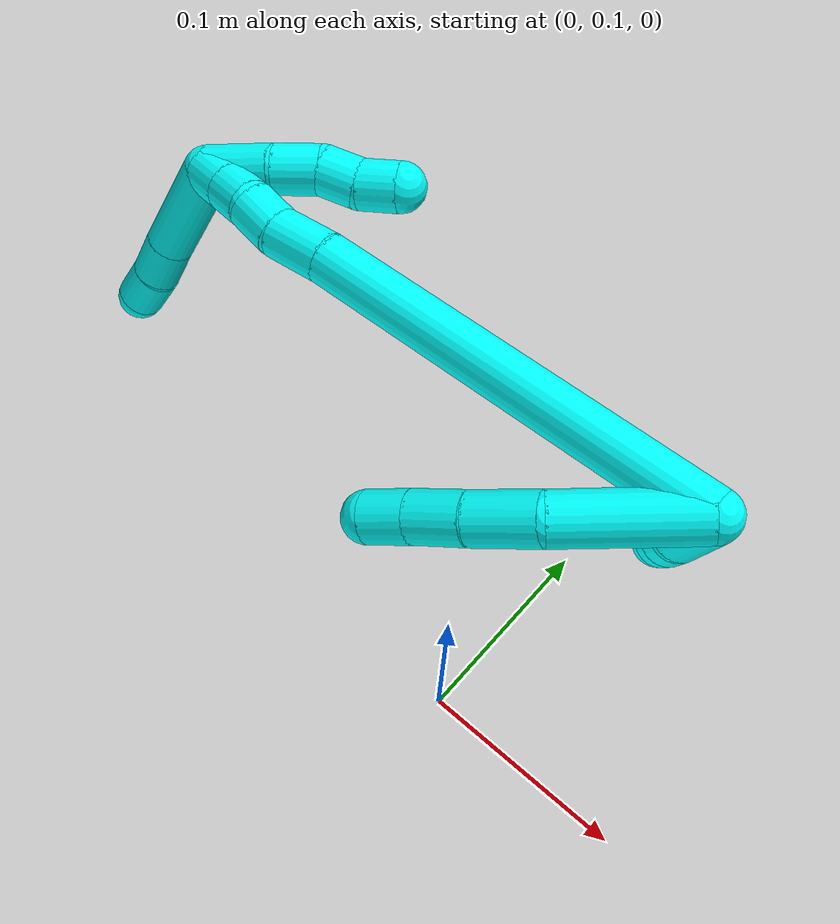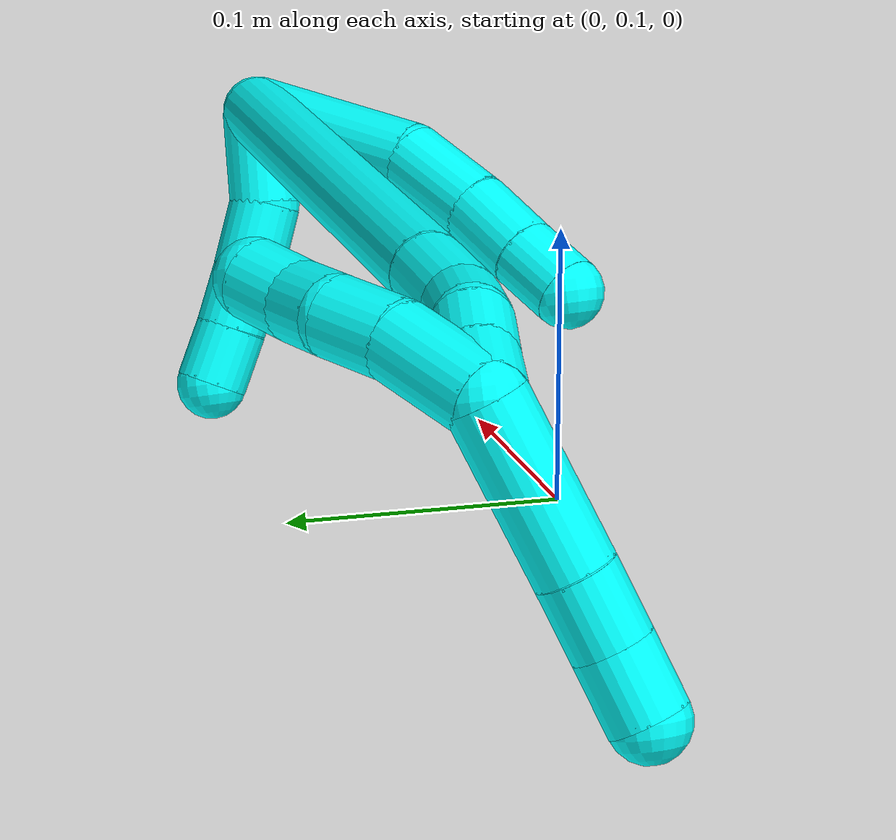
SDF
<sdf version="1.7">
 <world name="default">
  <model name="3">
   <static>0</static>
   <link name="3">
    <collision name="collision-cylinder-e_1_2_8">
     <pose>-0.023208 -0.021121 -0.012949 2.12077 -0.752754 -1.22931</pose>
     <geometry><cylinder><radius>0.0125</radius><length>0.067893</length></cylinder></geometry>
     <surface>
      <friction><ode><mu>1.16</mu><mu2>1.16</mu2><slip1>0</slip1><slip2>0</slip2></ode></friction>
      <contact><ode><kp>1e+06</kp><kd>1</kd><max_vel>0</max_vel><min_depth>0.001</min_depth></ode></contact>
     </surface>
    </collision>
    <visual name="visual-cylinder-e_1_2_8">
     <pose>-0.023208 -0.021121 -0.012949 2.12077 -0.752754 -1.22931</pose>
     <geometry><cylinder><radius>0.0125</radius><length>0.067893</length></cylinder></geometry>
     <material><ambient>0.003922 1 0.996078 1</ambient></material>
    </visual>
    <collision name="collision-cylinder-e_2_8_9">
     <pose>-0.0573 -0.049567 -0.036257 2.52617 -0.709058 -1.72273</pose>
     <geometry><cylinder><radius>0.0125</radius><length>0.033434</length></cylinder></geometry>
     <surface>
      <friction><ode><mu>1.16</mu><mu2>1.16</mu2><slip1>0</slip1><slip2>0</slip2></ode></friction>
      <contact><ode><kp>1e+06</kp><kd>1</kd><max_vel>0</max_vel><min_depth>0.001</min_depth></ode></contact>
     </surface>
    </collision>
    <visual name="visual-cylinder-e_2_8_9">
     <pose>-0.0573 -0.049567 -0.036257 2.52617 -0.709058 -1.72273</pose>
     <geometry><cylinder><radius>0.0125</radius><length>0.033434</length></cylinder></geometry>
     <material><ambient>0.003922 1 0.996078 1</ambient></material>
    </visual>
    <collision name="collision-cylinder-e_3_9_10">
     <pose>-0.076806 -0.061815 -0.055532 2.637 -0.702524 -1.91551</pose>
     <geometry><cylinder><radius>0.0125</radius><length>0.026687</length></cylinder></geometry>
     <surface>
      <friction><ode><mu>1.16</mu><mu2>1.16</mu2><slip1>0</slip1><slip2>0</slip2></ode></friction>
      <contact><ode><kp>1e+06</kp><kd>1</kd><max_vel>0</max_vel><min_depth>0.001</min_depth></ode></contact>
     </surface>
    </collision>
    <visual name="visual-cylinder-e_3_9_10">
     <pose>-0.076806 -0.061815 -0.055532 2.637 -0.702524 -1.91551</pose>
     <geometry><cylinder><radius>0.0125</radius><length>0.026687</length></cylinder></geometry>
     <material><ambient>0.003922 1 0.996078 1</ambient></material>
    </visual>
    <collision name="collision-cylinder-e_4_10_6">
     <pose>-0.092343 -0.071197 -0.071737 2.59276 -0.680287 -1.79763</pose>
     <geometry><cylinder><radius>0.0125</radius><length>0.021986</length></cylinder></geometry>
     <surface>
      <friction><ode><mu>1.16</mu><mu2>1.16</mu2><slip1>0</slip1><slip2>0</slip2></ode></friction>
      <contact><ode><kp>1e+06</kp><kd>1</kd><max_vel>0</max_vel><min_depth>0.001</min_depth></ode></contact>
     </surface>
    </collision>
    <visual name="visual-cylinder-e_4_10_6">
     <pose>-0.092343 -0.071197 -0.071737 2.59276 -0.680287 -1.79763</pose>
     <geometry><cylinder><radius>0.0125</radius><length>0.021986</length></cylinder></geometry>
     <material><ambient>0.003922 1 0.996078 1</ambient></material>
    </visual>
    <collision name="collision-cylinder-e_1_2_11">
     <pose>-9.2e-05 0.00098 -0.016487 -3.0822 -0.005555 0.186445</pose>
     <geometry><cylinder><radius>0.0125</radius><length>0.033033</length></cylinder></geometry>
     <surface>
      <friction><ode><mu>1.16</mu><mu2>1.16</mu2><slip1>0</slip1><slip2>0</slip2></ode></friction>
      <contact><ode><kp>1e+06</kp><kd>1</kd><max_vel>0</max_vel><min_depth>0.001</min_depth></ode></contact>
     </surface>
    </collision>
    <visual name="visual-cylinder-e_1_2_11">
     <pose>-9.2e-05 0.00098 -0.016487 -3.0822 -0.005555 0.186445</pose>
     <geometry><cylinder><radius>0.0125</radius><length>0.033033</length></cylinder></geometry>
     <material><ambient>0.003922 1 0.996078 1</ambient></material>
    </visual>
    <collision name="collision-cylinder-e_2_11_12">
     <pose>0.000864 0.006404 -0.044439 -2.77182 0.084966 -0.446992</pose>
     <geometry><cylinder><radius>0.0125</radius><length>0.02468</length></cylinder></geometry>
     <surface>
      <friction><ode><mu>1.16</mu><mu2>1.16</mu2><slip1>0</slip1><slip2>0</slip2></ode></friction>
      <contact><ode><kp>1e+06</kp><kd>1</kd><max_vel>0</max_vel><min_depth>0.001</min_depth></ode></contact>
     </surface>
    </collision>
    <visual name="visual-cylinder-e_2_11_12">
     <pose>0.000864 0.006404 -0.044439 -2.77182 0.084966 -0.446992</pose>
     <geometry><cylinder><radius>0.0125</radius><length>0.02468</length></cylinder></geometry>
     <material><ambient>0.003922 1 0.996078 1</ambient></material>
    </visual>
    <collision name="collision-cylinder-e_3_12_13">
     <pose>0.002686 0.015139 -0.065639 -2.72645 0.072706 -0.342004</pose>
     <geometry><cylinder><radius>0.0125</radius><length>0.021336</length></cylinder></geometry>
     <surface>
      <friction><ode><mu>1.16</mu><mu2>1.16</mu2><slip1>0</slip1><slip2>0</slip2></ode></friction>
      <contact><ode><kp>1e+06</kp><kd>1</kd><max_vel>0</max_vel><min_depth>0.001</min_depth></ode></contact>
     </surface>
    </collision>
    <visual name="visual-cylinder-e_3_12_13">
     <pose>0.002686 0.015139 -0.065639 -2.72645 0.072706 -0.342004</pose>
     <geometry><cylinder><radius>0.0125</radius><length>0.021336</length></cylinder></geometry>
     <material><ambient>0.003922 1 0.996078 1</ambient></material>
    </visual>
    <collision name="collision-cylinder-e_4_13_5">
     <pose>0.004299 0.024138 -0.084696 -2.67392 0.080065 -0.333195</pose>
     <geometry><cylinder><radius>0.0125</radius><length>0.020951</length></cylinder></geometry>
     <surface>
      <friction><ode><mu>1.16</mu><mu2>1.16</mu2><slip1>0</slip1><slip2>0</slip2></ode></friction>
      <contact><ode><kp>1e+06</kp><kd>1</kd><max_vel>0</max_vel><min_depth>0.001</min_depth></ode></contact>
     </surface>
    </collision>
    <visual name="visual-cylinder-e_4_13_5">
     <pose>0.004299 0.024138 -0.084696 -2.67392 0.080065 -0.333195</pose>
     <geometry><cylinder><radius>0.0125</radius><length>0.020951</length></cylinder></geometry>
     <material><ambient>0.003922 1 0.996078 1</ambient></material>
    </visual>
    <collision name="collision-cylinder-e_1_2_14">
     <pose>-0.098905 -0.002401 -0.034105 3.07131 -1.23798 -3.04297</pose>
     <geometry><cylinder><radius>0.0125</radius><length>0.209295</length></cylinder></geometry>
     <surface>
      <friction><ode><mu>1.16</mu><mu2>1.16</mu2><slip1>0</slip1><slip2>0</slip2></ode></friction>
      <contact><ode><kp>1e+06</kp><kd>1</kd><max_vel>0</max_vel><min_depth>0.001</min_depth></ode></contact>
     </surface>
    </collision>
    <visual name="visual-cylinder-e_1_2_14">
     <pose>-0.098905 -0.002401 -0.034105 3.07131 -1.23798 -3.04297</pose>
     <geometry><cylinder><radius>0.0125</radius><length>0.209295</length></cylinder></geometry>
     <material><ambient>0.003922 1 0.996078 1</ambient></material>
    </visual>
    <collision name="collision-cylinder-e_2_14_15">
     <pose>-0.211049 -0.005727 -0.073905 2.98063 -1.1598 -2.89656</pose>
     <geometry><cylinder><radius>0.0125</radius><length>0.028883</length></cylinder></geometry>
     <surface>
      <friction><ode><mu>1.16</mu><mu2>1.16</mu2><slip1>0</slip1><slip2>0</slip2></ode></friction>
      <contact><ode><kp>1e+06</kp><kd>1</kd><max_vel>0</max_vel><min_depth>0.001</min_depth></ode></contact>
     </surface>
    </collision>
    <visual name="visual-cylinder-e_2_14_15">
     <pose>-0.211049 -0.005727 -0.073905 2.98063 -1.1598 -2.89656</pose>
     <geometry><cylinder><radius>0.0125</radius><length>0.028883</length></cylinder></geometry>
     <material><ambient>0.003922 1 0.996078 1</ambient></material>
    </visual>
    <collision name="collision-cylinder-e_3_15_16">
     <pose>-0.23447 -0.005114 -0.082609 -2.66911 -1.2504 2.49774</pose>
     <geometry><cylinder><radius>0.0125</radius><length>0.021457</length></cylinder></geometry>
     <surface>
      <friction><ode><mu>1.16</mu><mu2>1.16</mu2><slip1>0</slip1><slip2>0</slip2></ode></friction>
      <contact><ode><kp>1e+06</kp><kd>1</kd><max_vel>0</max_vel><min_depth>0.001</min_depth></ode></contact>
     </surface>
    </collision>
    <visual name="visual-cylinder-e_3_15_16">
     <pose>-0.23447 -0.005114 -0.082609 -2.66911 -1.2504 2.49774</pose>
     <geometry><cylinder><radius>0.0125</radius><length>0.021457</length></cylinder></geometry>
     <material><ambient>0.003922 1 0.996078 1</ambient></material>
    </visual>
    <collision name="collision-cylinder-e_4_16_17">
     <pose>-0.252982 -0.001492 -0.09095 -2.76909 -0.9686 2.45371</pose>
     <geometry><cylinder><radius>0.0125</radius><length>0.020215</length></cylinder></geometry>
     <surface>
      <friction><ode><mu>1.16</mu><mu2>1.16</mu2><slip1>0</slip1><slip2>0</slip2></ode></friction>
      <contact><ode><kp>1e+06</kp><kd>1</kd><max_vel>0</max_vel><min_depth>0.001</min_depth></ode></contact>
     </surface>
    </collision>
    <visual name="visual-cylinder-e_4_16_17">
     <pose>-0.252982 -0.001492 -0.09095 -2.76909 -0.9686 2.45371</pose>
     <geometry><cylinder><radius>0.0125</radius><length>0.020215</length></cylinder></geometry>
     <material><ambient>0.003922 1 0.996078 1</ambient></material>
    </visual>
    <collision name="collision-cylinder-e_5_17_1">
     <pose>-0.269824 0.00243 -0.101349 -2.79337 -1.00641 2.52305</pose>
     <geometry><cylinder><radius>0.0125</radius><length>0.02015</length></cylinder></geometry>
     <surface>
      <friction><ode><mu>1.16</mu><mu2>1.16</mu2><slip1>0</slip1><slip2>0</slip2></ode></friction>
      <contact><ode><kp>1e+06</kp><kd>1</kd><max_vel>0</max_vel><min_depth>0.001</min_depth></ode></contact>
     </surface>
    </collision>
    <visual name="visual-cylinder-e_5_17_1">
     <pose>-0.269824 0.00243 -0.101349 -2.79337 -1.00641 2.52305</pose>
     <geometry><cylinder><radius>0.0125</radius><length>0.02015</length></cylinder></geometry>
     <material><ambient>0.003922 1 0.996078 1</ambient></material>
    </visual>
    <collision name="collision-cylinder-e_1_1_18">
     <pose>-0.265311 0.012332 -0.096844 -0.700101 0.805432 -0.30858</pose>
     <geometry><cylinder><radius>0.0125</radius><length>0.036125</length></cylinder></geometry>
     <surface>
      <friction><ode><mu>1.16</mu><mu2>1.16</mu2><slip1>0</slip1><slip2>0</slip2></ode></friction>
      <contact><ode><kp>1e+06</kp><kd>1</kd><max_vel>0</max_vel><min_depth>0.001</min_depth></ode></contact>
     </surface>
    </collision>
    <visual name="visual-cylinder-e_1_1_18">
     <pose>-0.265311 0.012332 -0.096844 -0.700101 0.805432 -0.30858</pose>
     <geometry><cylinder><radius>0.0125</radius><length>0.036125</length></cylinder></geometry>
     <material><ambient>0.003922 1 0.996078 1</ambient></material>
    </visual>
    <collision name="collision-cylinder-e_2_18_19">
     <pose>-0.243526 0.026894 -0.082679 -0.955422 0.833237 -0.450419</pose>
     <geometry><cylinder><radius>0.0125</radius><length>0.023672</length></cylinder></geometry>
     <surface>
      <friction><ode><mu>1.16</mu><mu2>1.16</mu2><slip1>0</slip1><slip2>0</slip2></ode></friction>
      <contact><ode><kp>1e+06</kp><kd>1</kd><max_vel>0</max_vel><min_depth>0.001</min_depth></ode></contact>
     </surface>
    </collision>
    <visual name="visual-cylinder-e_2_18_19">
     <pose>-0.243526 0.026894 -0.082679 -0.955422 0.833237 -0.450419</pose>
     <geometry><cylinder><radius>0.0125</radius><length>0.023672</length></cylinder></geometry>
     <material><ambient>0.003922 1 0.996078 1</ambient></material>
    </visual>
    <collision name="collision-cylinder-e_3_19_20">
     <pose>-0.225502 0.036246 -0.075272 -0.792491 1.16263 -0.536535</pose>
     <geometry><cylinder><radius>0.0125</radius><length>0.020186</length></cylinder></geometry>
     <surface>
      <friction><ode><mu>1.16</mu><mu2>1.16</mu2><slip1>0</slip1><slip2>0</slip2></ode></friction>
      <contact><ode><kp>1e+06</kp><kd>1</kd><max_vel>0</max_vel><min_depth>0.001</min_depth></ode></contact>
     </surface>
    </collision>
    <visual name="visual-cylinder-e_3_19_20">
     <pose>-0.225502 0.036246 -0.075272 -0.792491 1.16263 -0.536535</pose>
     <geometry><cylinder><radius>0.0125</radius><length>0.020186</length></cylinder></geometry>
     <material><ambient>0.003922 1 0.996078 1</ambient></material>
    </visual>
    <collision name="collision-cylinder-e_4_20_4">
     <pose>-0.208485 0.043758 -0.068174 -0.827231 0.886101 -0.41069</pose>
     <geometry><cylinder><radius>0.0125</radius><length>0.020017</length></cylinder></geometry>
     <surface>
      <friction><ode><mu>1.16</mu><mu2>1.16</mu2><slip1>0</slip1><slip2>0</slip2></ode></friction>
      <contact><ode><kp>1e+06</kp><kd>1</kd><max_vel>0</max_vel><min_depth>0.001</min_depth></ode></contact>
     </surface>
    </collision>
    <visual name="visual-cylinder-e_4_20_4">
     <pose>-0.208485 0.043758 -0.068174 -0.827231 0.886101 -0.41069</pose>
     <geometry><cylinder><radius>0.0125</radius><length>0.020017</length></cylinder></geometry>
     <material><ambient>0.003922 1 0.996078 1</ambient></material>
    </visual>
    <collision name="collision-cylinder-e_1_1_21">
     <pose>-0.278016 -0.005116 -0.131635 2.78533 0.011924 0.066206</pose>
     <geometry><cylinder><radius>0.0125</radius><length>0.053824</length></cylinder></geometry>
     <surface>
      <friction><ode><mu>1.16</mu><mu2>1.16</mu2><slip1>0</slip1><slip2>0</slip2></ode></friction>
      <contact><ode><kp>1e+06</kp><kd>1</kd><max_vel>0</max_vel><min_depth>0.001</min_depth></ode></contact>
     </surface>
    </collision>
    <visual name="visual-cylinder-e_1_1_21">
     <pose>-0.278016 -0.005116 -0.131635 2.78533 0.011924 0.066206</pose>
     <geometry><cylinder><radius>0.0125</radius><length>0.053824</length></cylinder></geometry>
     <material><ambient>0.003922 1 0.996078 1</ambient></material>
    </visual>
    <collision name="collision-cylinder-e_2_21_22">
     <pose>-0.27705 -0.018548 -0.167784 2.78696 0.055291 0.306213</pose>
     <geometry><cylinder><radius>0.0125</radius><length>0.023343</length></cylinder></geometry>
     <surface>
      <friction><ode><mu>1.16</mu><mu2>1.16</mu2><slip1>0</slip1><slip2>0</slip2></ode></friction>
      <contact><ode><kp>1e+06</kp><kd>1</kd><max_vel>0</max_vel><min_depth>0.001</min_depth></ode></contact>
     </surface>
    </collision>
    <visual name="visual-cylinder-e_2_21_22">
     <pose>-0.27705 -0.018548 -0.167784 2.78696 0.055291 0.306213</pose>
     <geometry><cylinder><radius>0.0125</radius><length>0.023343</length></cylinder></geometry>
     <material><ambient>0.003922 1 0.996078 1</ambient></material>
    </visual>
    <collision name="collision-cylinder-e_3_22_3">
     <pose>-0.277296 -0.026109 -0.189538 2.82768 -0.078143 -0.484328</pose>
     <geometry><cylinder><radius>0.0125</radius><length>0.022833</length></cylinder></geometry>
     <surface>
      <friction><ode><mu>1.16</mu><mu2>1.16</mu2><slip1>0</slip1><slip2>0</slip2></ode></friction>
      <contact><ode><kp>1e+06</kp><kd>1</kd><max_vel>0</max_vel><min_depth>0.001</min_depth></ode></contact>
     </surface>
    </collision>
    <visual name="visual-cylinder-e_3_22_3">
     <pose>-0.277296 -0.026109 -0.189538 2.82768 -0.078143 -0.484328</pose>
     <geometry><cylinder><radius>0.0125</radius><length>0.022833</length></cylinder></geometry>
     <material><ambient>0.003922 1 0.996078 1</ambient></material>
    </visual>
    <collision name="collision-sphere-3">
     <pose>-0.278187 -0.029624 -0.200363 0 -0 0</pose>
     <geometry><sphere><radius>0.0125</radius></sphere></geometry>
     <surface>
      <friction><ode><mu>1.16</mu><mu2>1.16</mu2><slip1>0</slip1><slip2>0</slip2></ode></friction>
      <contact><ode><kp>1e+06</kp><kd>1</kd><max_vel>0</max_vel><min_depth>0.001</min_depth></ode></contact>
     </surface>
    </collision>
    <visual name="visual-sphere-3">
     <pose>-0.278187 -0.029624 -0.200363 0 -0 0</pose>
     <geometry><sphere><radius>0.0125</radius></sphere></geometry>
     <material><ambient>0.003922 1 0.996078 1</ambient></material>
    </visual>
    <collision name="collision-sphere-22">
     <pose>-0.276405 -0.022595 -0.178712 0 -0 0</pose>
     <geometry><sphere><radius>0.0125</radius></sphere></geometry>
     <surface>
      <friction><ode><mu>1.16</mu><mu2>1.16</mu2><slip1>0</slip1><slip2>0</slip2></ode></friction>
      <contact><ode><kp>1e+06</kp><kd>1</kd><max_vel>0</max_vel><min_depth>0.001</min_depth></ode></contact>
     </surface>
    </collision>
    <visual name="visual-sphere-22">
     <pose>-0.276405 -0.022595 -0.178712 0 -0 0</pose>
     <geometry><sphere><radius>0.0125</radius></sphere></geometry>
     <material><ambient>0.003922 1 0.996078 1</ambient></material>
    </visual>
    <collision name="collision-sphere-21">
     <pose>-0.277695 -0.014502 -0.156855 0 -0 0</pose>
     <geometry><sphere><radius>0.0125</radius></sphere></geometry>
     <surface>
      <friction><ode><mu>1.16</mu><mu2>1.16</mu2><slip1>0</slip1><slip2>0</slip2></ode></friction>
      <contact><ode><kp>1e+06</kp><kd>1</kd><max_vel>0</max_vel><min_depth>0.001</min_depth></ode></contact>
     </surface>
    </collision>
    <visual name="visual-sphere-21">
     <pose>-0.277695 -0.014502 -0.156855 0 -0 0</pose>
     <geometry><sphere><radius>0.0125</radius></sphere></geometry>
     <material><ambient>0.003922 1 0.996078 1</ambient></material>
    </visual>
    <collision name="collision-sphere-4">
     <pose>-0.200733 0.048417 -0.06389 0 -0 0</pose>
     <geometry><sphere><radius>0.0125</radius></sphere></geometry>
     <surface>
      <friction><ode><mu>1.16</mu><mu2>1.16</mu2><slip1>0</slip1><slip2>0</slip2></ode></friction>
      <contact><ode><kp>1e+06</kp><kd>1</kd><max_vel>0</max_vel><min_depth>0.001</min_depth></ode></contact>
     </surface>
    </collision>
    <visual name="visual-sphere-4">
     <pose>-0.200733 0.048417 -0.06389 0 -0 0</pose>
     <geometry><sphere><radius>0.0125</radius></sphere></geometry>
     <material><ambient>0.003922 1 0.996078 1</ambient></material>
    </visual>
    <collision name="collision-sphere-20">
     <pose>-0.216238 0.039099 -0.072459 0 -0 0</pose>
     <geometry><sphere><radius>0.0125</radius></sphere></geometry>
     <surface>
      <friction><ode><mu>1.16</mu><mu2>1.16</mu2><slip1>0</slip1><slip2>0</slip2></ode></friction>
      <contact><ode><kp>1e+06</kp><kd>1</kd><max_vel>0</max_vel><min_depth>0.001</min_depth></ode></contact>
     </surface>
    </collision>
    <visual name="visual-sphere-20">
     <pose>-0.216238 0.039099 -0.072459 0 -0 0</pose>
     <geometry><sphere><radius>0.0125</radius></sphere></geometry>
     <material><ambient>0.003922 1 0.996078 1</ambient></material>
    </visual>
    <collision name="collision-sphere-11">
     <pose>-0.000183 0.001961 -0.032975 0 -0 0</pose>
     <geometry><sphere><radius>0.0125</radius></sphere></geometry>
     <surface>
      <friction><ode><mu>1.16</mu><mu2>1.16</mu2><slip1>0</slip1><slip2>0</slip2></ode></friction>
      <contact><ode><kp>1e+06</kp><kd>1</kd><max_vel>0</max_vel><min_depth>0.001</min_depth></ode></contact>
     </surface>
    </collision>
    <visual name="visual-sphere-11">
     <pose>-0.000183 0.001961 -0.032975 0 -0 0</pose>
     <geometry><sphere><radius>0.0125</radius></sphere></geometry>
     <material><ambient>0.003922 1 0.996078 1</ambient></material>
    </visual>
    <collision name="collision-sphere-6">
     <pose>-0.099258 -0.075655 -0.079028 0 -0 0</pose>
     <geometry><sphere><radius>0.0125</radius></sphere></geometry>
     <surface>
      <friction><ode><mu>1.16</mu><mu2>1.16</mu2><slip1>0</slip1><slip2>0</slip2></ode></friction>
      <contact><ode><kp>1e+06</kp><kd>1</kd><max_vel>0</max_vel><min_depth>0.001</min_depth></ode></contact>
     </surface>
    </collision>
    <visual name="visual-sphere-6">
     <pose>-0.099258 -0.075655 -0.079028 0 -0 0</pose>
     <geometry><sphere><radius>0.0125</radius></sphere></geometry>
     <material><ambient>0.003922 1 0.996078 1</ambient></material>
    </visual>
    <collision name="collision-sphere-10">
     <pose>-0.085428 -0.066738 -0.064447 0 -0 0</pose>
     <geometry><sphere><radius>0.0125</radius></sphere></geometry>
     <surface>
      <friction><ode><mu>1.16</mu><mu2>1.16</mu2><slip1>0</slip1><slip2>0</slip2></ode></friction>
      <contact><ode><kp>1e+06</kp><kd>1</kd><max_vel>0</max_vel><min_depth>0.001</min_depth></ode></contact>
     </surface>
    </collision>
    <visual name="visual-sphere-10">
     <pose>-0.085428 -0.066738 -0.064447 0 -0 0</pose>
     <geometry><sphere><radius>0.0125</radius></sphere></geometry>
     <material><ambient>0.003922 1 0.996078 1</ambient></material>
    </visual>
    <collision name="collision-sphere-9">
     <pose>-0.068185 -0.056892 -0.046617 0 -0 0</pose>
     <geometry><sphere><radius>0.0125</radius></sphere></geometry>
     <surface>
      <friction><ode><mu>1.16</mu><mu2>1.16</mu2><slip1>0</slip1><slip2>0</slip2></ode></friction>
      <contact><ode><kp>1e+06</kp><kd>1</kd><max_vel>0</max_vel><min_depth>0.001</min_depth></ode></contact>
     </surface>
    </collision>
    <visual name="visual-sphere-9">
     <pose>-0.068185 -0.056892 -0.046617 0 -0 0</pose>
     <geometry><sphere><radius>0.0125</radius></sphere></geometry>
     <material><ambient>0.003922 1 0.996078 1</ambient></material>
    </visual>
    <collision name="collision-sphere-2">
     <geometry><sphere><radius>0.0125</radius></sphere></geometry>
     <surface>
      <friction><ode><mu>1.16</mu><mu2>1.16</mu2><slip1>0</slip1><slip2>0</slip2></ode></friction>
      <contact><ode><kp>1e+06</kp><kd>1</kd><max_vel>0</max_vel><min_depth>0.001</min_depth></ode></contact>
     </surface>
    </collision>
    <visual name="visual-sphere-2">
     <geometry><sphere><radius>0.0125</radius></sphere></geometry>
     <material><ambient>0.003922 1 0.996078 1</ambient></material>
    </visual>
    <collision name="collision-sphere-19">
     <pose>-0.234766 0.033393 -0.078084 0 -0 0</pose>
     <geometry><sphere><radius>0.0125</radius></sphere></geometry>
     <surface>
      <friction><ode><mu>1.16</mu><mu2>1.16</mu2><slip1>0</slip1><slip2>0</slip2></ode></friction>
      <contact><ode><kp>1e+06</kp><kd>1</kd><max_vel>0</max_vel><min_depth>0.001</min_depth></ode></contact>
     </surface>
    </collision>
    <visual name="visual-sphere-19">
     <pose>-0.234766 0.033393 -0.078084 0 -0 0</pose>
     <geometry><sphere><radius>0.0125</radius></sphere></geometry>
     <material><ambient>0.003922 1 0.996078 1</ambient></material>
    </visual>
    <collision name="collision-sphere-8">
     <pose>-0.046415 -0.042242 -0.025897 0 -0 0</pose>
     <geometry><sphere><radius>0.0125</radius></sphere></geometry>
     <surface>
      <friction><ode><mu>1.16</mu><mu2>1.16</mu2><slip1>0</slip1><slip2>0</slip2></ode></friction>
      <contact><ode><kp>1e+06</kp><kd>1</kd><max_vel>0</max_vel><min_depth>0.001</min_depth></ode></contact>
     </surface>
    </collision>
    <visual name="visual-sphere-8">
     <pose>-0.046415 -0.042242 -0.025897 0 -0 0</pose>
     <geometry><sphere><radius>0.0125</radius></sphere></geometry>
     <material><ambient>0.003922 1 0.996078 1</ambient></material>
    </visual>
    <collision name="collision-sphere-12">
     <pose>0.001911 0.010848 -0.055903 0 -0 0</pose>
     <geometry><sphere><radius>0.0125</radius></sphere></geometry>
     <surface>
      <friction><ode><mu>1.16</mu><mu2>1.16</mu2><slip1>0</slip1><slip2>0</slip2></ode></friction>
      <contact><ode><kp>1e+06</kp><kd>1</kd><max_vel>0</max_vel><min_depth>0.001</min_depth></ode></contact>
     </surface>
    </collision>
    <visual name="visual-sphere-12">
     <pose>0.001911 0.010848 -0.055903 0 -0 0</pose>
     <geometry><sphere><radius>0.0125</radius></sphere></geometry>
     <material><ambient>0.003922 1 0.996078 1</ambient></material>
    </visual>
    <collision name="collision-sphere-13">
     <pose>0.003461 0.01943 -0.075375 0 -0 0</pose>
     <geometry><sphere><radius>0.0125</radius></sphere></geometry>
     <surface>
      <friction><ode><mu>1.16</mu><mu2>1.16</mu2><slip1>0</slip1><slip2>0</slip2></ode></friction>
      <contact><ode><kp>1e+06</kp><kd>1</kd><max_vel>0</max_vel><min_depth>0.001</min_depth></ode></contact>
     </surface>
    </collision>
    <visual name="visual-sphere-13">
     <pose>0.003461 0.01943 -0.075375 0 -0 0</pose>
     <geometry><sphere><radius>0.0125</radius></sphere></geometry>
     <material><ambient>0.003922 1 0.996078 1</ambient></material>
    </visual>
    <collision name="collision-sphere-5">
     <pose>0.005136 0.028845 -0.094017 0 -0 0</pose>
     <geometry><sphere><radius>0.0125</radius></sphere></geometry>
     <surface>
      <friction><ode><mu>1.16</mu><mu2>1.16</mu2><slip1>0</slip1><slip2>0</slip2></ode></friction>
      <contact><ode><kp>1e+06</kp><kd>1</kd><max_vel>0</max_vel><min_depth>0.001</min_depth></ode></contact>
     </surface>
    </collision>
    <visual name="visual-sphere-5">
     <pose>0.005136 0.028845 -0.094017 0 -0 0</pose>
     <geometry><sphere><radius>0.0125</radius></sphere></geometry>
     <material><ambient>0.003922 1 0.996078 1</ambient></material>
    </visual>
    <collision name="collision-sphere-14">
     <pose>-0.19781 -0.004802 -0.06821 0 -0 0</pose>
     <geometry><sphere><radius>0.0125</radius></sphere></geometry>
     <surface>
      <friction><ode><mu>1.16</mu><mu2>1.16</mu2><slip1>0</slip1><slip2>0</slip2></ode></friction>
      <contact><ode><kp>1e+06</kp><kd>1</kd><max_vel>0</max_vel><min_depth>0.001</min_depth></ode></contact>
     </surface>
    </collision>
    <visual name="visual-sphere-14">
     <pose>-0.19781 -0.004802 -0.06821 0 -0 0</pose>
     <geometry><sphere><radius>0.0125</radius></sphere></geometry>
     <material><ambient>0.003922 1 0.996078 1</ambient></material>
    </visual>
    <collision name="collision-sphere-15">
     <pose>-0.224288 -0.006651 -0.0796 0 -0 0</pose>
     <geometry><sphere><radius>0.0125</radius></sphere></geometry>
     <surface>
      <friction><ode><mu>1.16</mu><mu2>1.16</mu2><slip1>0</slip1><slip2>0</slip2></ode></friction>
      <contact><ode><kp>1e+06</kp><kd>1</kd><max_vel>0</max_vel><min_depth>0.001</min_depth></ode></contact>
     </surface>
    </collision>
    <visual name="visual-sphere-15">
     <pose>-0.224288 -0.006651 -0.0796 0 -0 0</pose>
     <geometry><sphere><radius>0.0125</radius></sphere></geometry>
     <material><ambient>0.003922 1 0.996078 1</ambient></material>
    </visual>
    <collision name="collision-sphere-16">
     <pose>-0.244652 -0.003576 -0.085617 0 -0 0</pose>
     <geometry><sphere><radius>0.0125</radius></sphere></geometry>
     <surface>
      <friction><ode><mu>1.16</mu><mu2>1.16</mu2><slip1>0</slip1><slip2>0</slip2></ode></friction>
      <contact><ode><kp>1e+06</kp><kd>1</kd><max_vel>0</max_vel><min_depth>0.001</min_depth></ode></contact>
     </surface>
    </collision>
    <visual name="visual-sphere-16">
     <pose>-0.244652 -0.003576 -0.085617 0 -0 0</pose>
     <geometry><sphere><radius>0.0125</radius></sphere></geometry>
     <material><ambient>0.003922 1 0.996078 1</ambient></material>
    </visual>
    <collision name="collision-sphere-17">
     <pose>-0.261312 0.000592 -0.096283 0 -0 0</pose>
     <geometry><sphere><radius>0.0125</radius></sphere></geometry>
     <surface>
      <friction><ode><mu>1.16</mu><mu2>1.16</mu2><slip1>0</slip1><slip2>0</slip2></ode></friction>
      <contact><ode><kp>1e+06</kp><kd>1</kd><max_vel>0</max_vel><min_depth>0.001</min_depth></ode></contact>
     </surface>
    </collision>
    <visual name="visual-sphere-17">
     <pose>-0.261312 0.000592 -0.096283 0 -0 0</pose>
     <geometry><sphere><radius>0.0125</radius></sphere></geometry>
     <material><ambient>0.003922 1 0.996078 1</ambient></material>
    </visual>
    <collision name="collision-sphere-1">
     <pose>-0.278337 0.004269 -0.106414 0 -0 0</pose>
     <geometry><sphere><radius>0.0125</radius></sphere></geometry>
     <surface>
      <friction><ode><mu>1.16</mu><mu2>1.16</mu2><slip1>0</slip1><slip2>0</slip2></ode></friction>
      <contact><ode><kp>1e+06</kp><kd>1</kd><max_vel>0</max_vel><min_depth>0.001</min_depth></ode></contact>
     </surface>
    </collision>
    <visual name="visual-sphere-1">
     <pose>-0.278337 0.004269 -0.106414 0 -0 0</pose>
     <geometry><sphere><radius>0.0125</radius></sphere></geometry>
     <material><ambient>0.003922 1 0.996078 1</ambient></material>
    </visual>
    <collision name="collision-sphere-18">
     <pose>-0.252286 0.020394 -0.087274 0 -0 0</pose>
     <geometry><sphere><radius>0.0125</radius></sphere></geometry>
     <surface>
      <friction><ode><mu>1.16</mu><mu2>1.16</mu2><slip1>0</slip1><slip2>0</slip2></ode></friction>
      <contact><ode><kp>1e+06</kp><kd>1</kd><max_vel>0</max_vel><min_depth>0.001</min_depth></ode></contact>
     </surface>
    </collision>
    <visual name="visual-sphere-18">
     <pose>-0.252286 0.020394 -0.087274 0 -0 0</pose>
     <geometry><sphere><radius>0.0125</radius></sphere></geometry>
     <material><ambient>0.003922 1 0.996078 1</ambient></material>
    </visual>
    <inertial>
     <pose>-0.135494 -0.006214 -0.064749 0 -0 0</pose>
     <mass>0.75</mass>
     <inertia>
      <ixx>-0.000291</ixx>
      <ixy>0</ixy>
      <ixz>0</ixz>
      <iyy>0.000722</iyy>
      <iyz>0</iyz>
      <izz>0.000766</izz>
     </inertia>
    </inertial>
   </link>
   <pose>0.05775 0.195502 0.135633 -0.064487 0.299782 -0.020233</pose>
  </model>
 </world>
</sdf>
